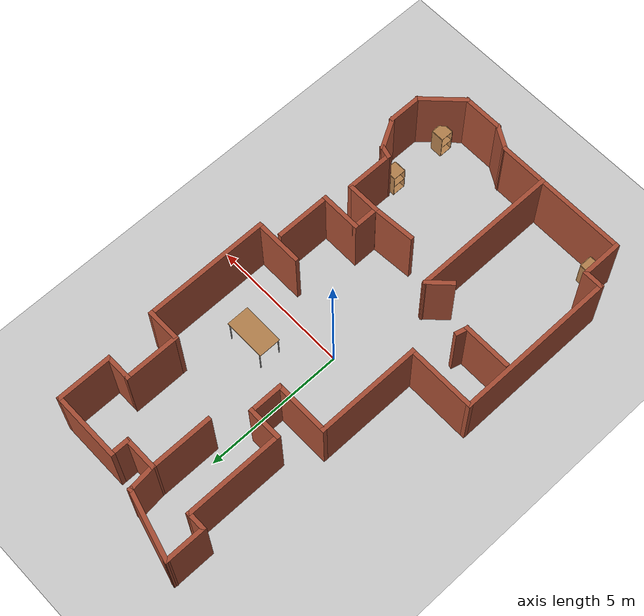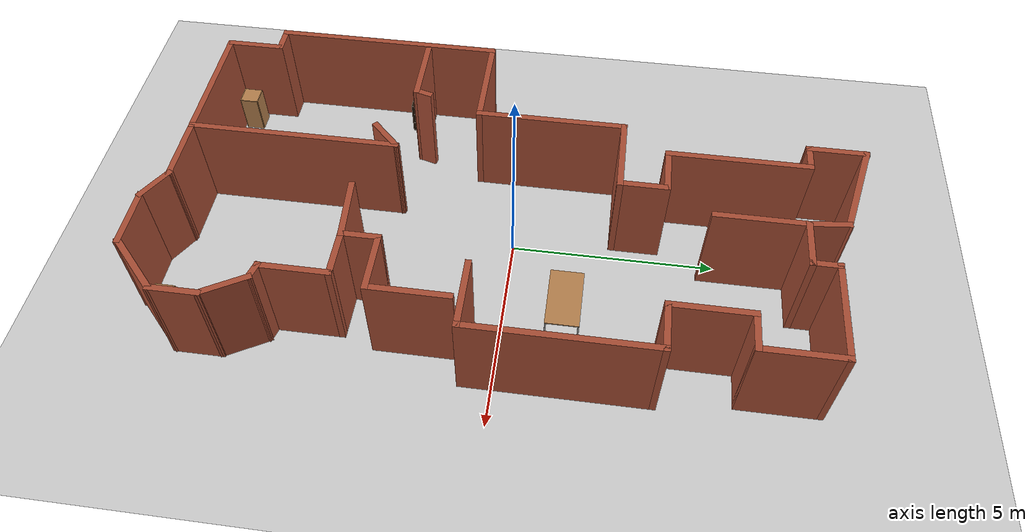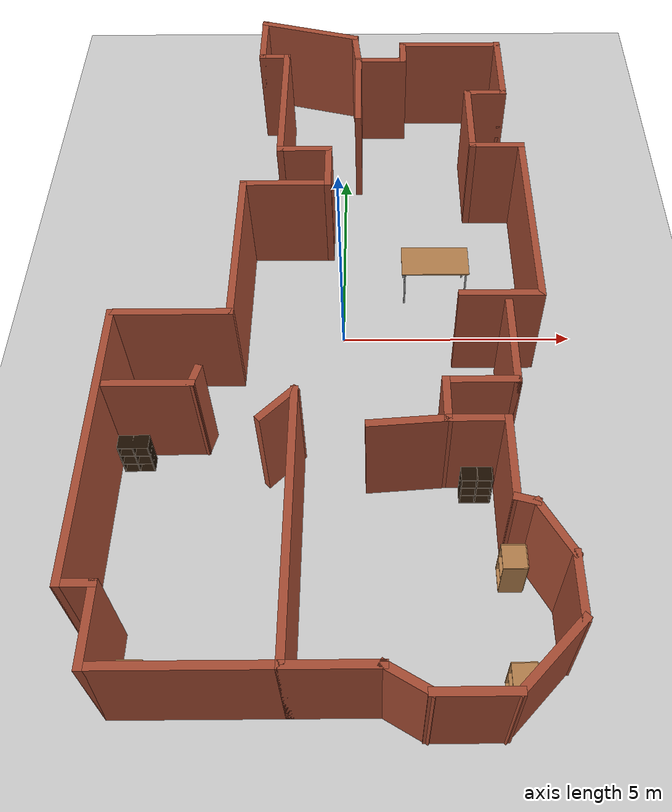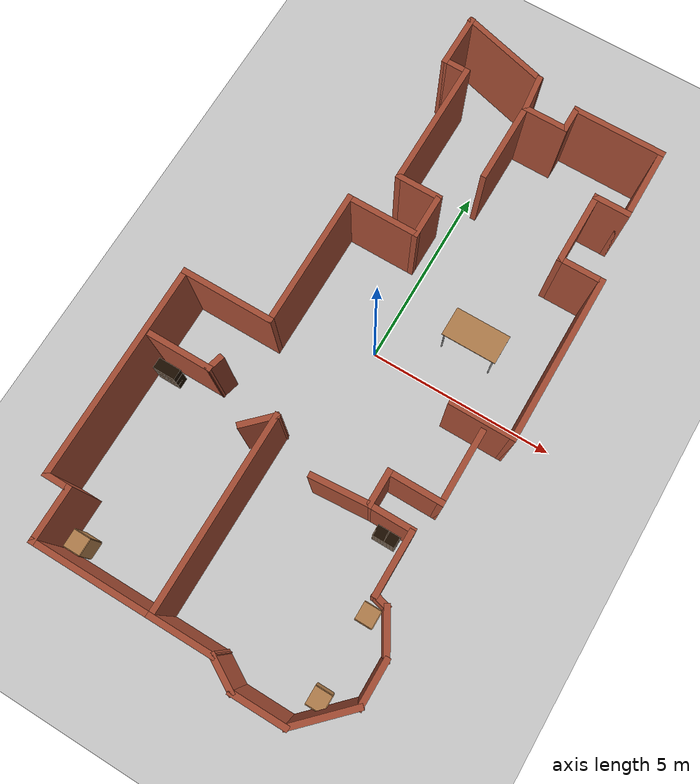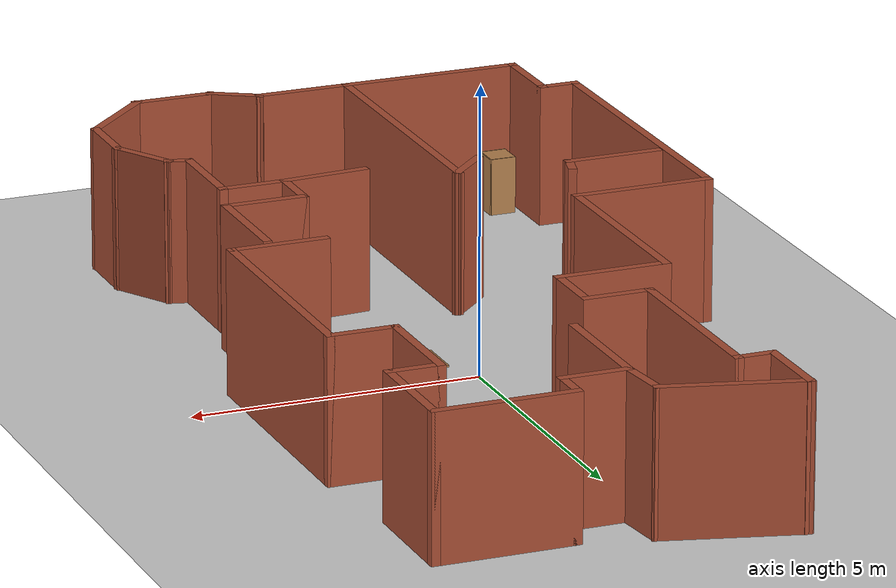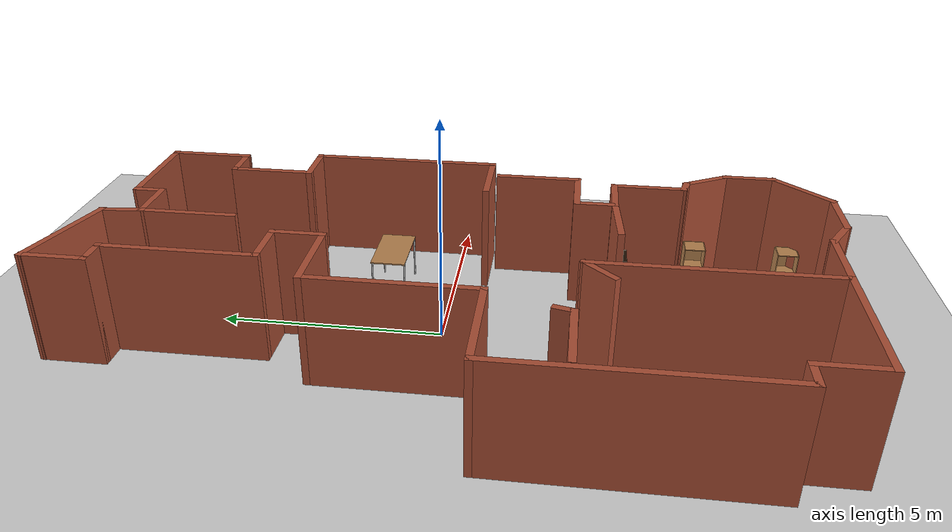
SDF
<sdf version="1.6">
 <world name="default">
  <light name="sun" type="directional">
   <pose>0 0 10 0 -0 0</pose>
   <diffuse>0.8 0.8 0.8 1</diffuse>
   <specular>0.2 0.2 0.2 1</specular>
   <attenuation>
    <range>1000</range>
    <constant>0.9</constant>
    <linear>0.01</linear>
    <quadratic>0.001</quadratic>
   </attenuation>
   <direction>-0.5 0.1 -0.9</direction>
  </light>
  <model name="ground_plane">
   <static>1</static>
   <link name="link">
    <collision name="collision">
     <geometry><plane><normal>0 0 1</normal><size>100 100</size></plane></geometry>
     <surface>
      <contact><collide_bitmask>65535</collide_bitmask></contact>
      <friction><ode><mu>100</mu><mu2>50</mu2></ode></friction>
     </surface>
    </collision>
    <visual name="visual">
     <cast_shadows>0</cast_shadows>
     <geometry><plane><normal>0 0 1</normal><size>100 100</size></plane></geometry>
     <material>
      <script><uri>file://media/materials/scripts/gazebo.material</uri><name>Gazebo/Grey</name></script>
     </material>
    </visual>
   </link>
  </model>
  <gravity>0 0 -9.8</gravity>
  <magnetic_field>6e-06 2.3e-05 -4.2e-05</magnetic_field>
  <atmosphere type="adiabatic"/>
  <physics name="default_physics" default="0" type="ode">
   <max_step_size>0.001</max_step_size>
   <real_time_factor>1</real_time_factor>
   <real_time_update_rate>1000</real_time_update_rate>
  </physics>
  <scene><ambient>0.4 0.4 0.4 1</ambient><background>0.7 0.7 0.7 1</background><shadows>1</shadows></scene>
  <audio><device>default</device></audio>
  <spherical_coordinates>
   <surface_model>EARTH_WGS84</surface_model>
   <latitude_deg>0</latitude_deg>
   <longitude_deg>0</longitude_deg>
   <elevation>0</elevation>
   <heading_deg>0</heading_deg>
  </spherical_coordinates>
  <model name="map_48">
   <pose>-0.257356 -0.138612 0 0 -0 0</pose>
   <link name="Wall_0">
    <collision name="Wall_0_Collision">
     <geometry><box><size>2.5 0.15 2.5</size></box></geometry>
     <pose>0 0 1.25 0 -0 0</pose>
    </collision>
    <visual name="Wall_0_Visual">
     <pose>0 0 1.25 0 -0 0</pose>
     <geometry><box><size>2.5 0.15 2.5</size></box></geometry>
     <material>
      <script><uri>file://media/materials/scripts/gazebo.material</uri><name>Gazebo/Bricks</name></script>
      <ambient>1 1 1 1</ambient>
     </material>
     <meta><layer>0</layer></meta>
    </visual>
    <pose>-0.646801 8.09049 0 0 -0 2.87979</pose>
   </link>
   <link name="Wall_1">
    <collision name="Wall_1_Collision">
     <geometry><box><size>1.5 0.15 2.5</size></box></geometry>
     <pose>0 0 1.25 0 -0 0</pose>
    </collision>
    <visual name="Wall_1_Visual">
     <pose>0 0 1.25 0 -0 0</pose>
     <geometry><box><size>1.5 0.15 2.5</size></box></geometry>
     <material>
      <script><uri>file://media/materials/scripts/gazebo.material</uri><name>Gazebo/Bricks</name></script>
      <ambient>1 1 1 1</ambient>
     </material>
     <meta><layer>0</layer></meta>
    </visual>
    <pose>-1.78176 7.7196 0 0 -0 -1.5708</pose>
   </link>
   <link name="Wall_10">
    <collision name="Wall_10_Collision">
     <geometry><box><size>0.75 0.15 2.5</size></box></geometry>
     <pose>0 0 1.25 0 -0 0</pose>
    </collision>
    <visual name="Wall_10_Visual">
     <pose>0 0 1.25 0 -0 0</pose>
     <geometry><box><size>0.75 0.15 2.5</size></box></geometry>
     <material>
      <script><uri>file://media/materials/scripts/gazebo.material</uri><name>Gazebo/Bricks</name></script>
      <ambient>1 1 1 1</ambient>
     </material>
     <meta><layer>0</layer></meta>
    </visual>
    <pose>-3.98176 -6.60539 0 0 -0 0</pose>
   </link>
   <link name="Wall_11">
    <collision name="Wall_11_Collision">
     <geometry><box><size>1.5 0.15 2.5</size></box></geometry>
     <pose>0 0 1.25 0 -0 0</pose>
    </collision>
    <visual name="Wall_11_Visual">
     <pose>0 0 1.25 0 -0 0</pose>
     <geometry><box><size>1.5 0.15 2.5</size></box></geometry>
     <material>
      <script><uri>file://media/materials/scripts/gazebo.material</uri><name>Gazebo/Bricks</name></script>
      <ambient>1 1 1 1</ambient>
     </material>
     <meta><layer>0</layer></meta>
    </visual>
    <pose>-3.68176 -7.2804 0 0 -0 -1.5708</pose>
   </link>
   <link name="Wall_12">
    <collision name="Wall_12_Collision">
     <geometry><box><size>3.25 0.15 2.5</size></box></geometry>
     <pose>0 0 1.25 0 -0 0</pose>
    </collision>
    <visual name="Wall_12_Visual">
     <pose>0 0 1.25 0 -0 0</pose>
     <geometry><box><size>3.25 0.15 2.5</size></box></geometry>
     <material>
      <script><uri>file://media/materials/scripts/gazebo.material</uri><name>Gazebo/Bricks</name></script>
      <ambient>1 1 1 1</ambient>
     </material>
     <meta><layer>0</layer></meta>
    </visual>
    <pose>-2.13176 -7.9554 0 0 -0 0</pose>
   </link>
   <link name="Wall_13">
    <collision name="Wall_13_Collision">
     <geometry><box><size>5.25 0.15 2.5</size></box></geometry>
     <pose>0 0 1.25 0 -0 0</pose>
    </collision>
    <visual name="Wall_13_Visual">
     <pose>0 0 1.25 0 -0 0</pose>
     <geometry><box><size>5.25 0.15 2.5</size></box></geometry>
     <material>
      <script><uri>file://media/materials/scripts/gazebo.material</uri><name>Gazebo/Bricks</name></script>
      <ambient>1 1 1 1</ambient>
     </material>
     <meta><layer>0</layer></meta>
    </visual>
    <pose>-0.581764 -5.4054 0 0 -0 1.5708</pose>
   </link>
   <link name="Wall_15">
    <collision name="Wall_15_Collision">
     <geometry><box><size>1.75 0.15 2.5</size></box></geometry>
     <pose>0 0 1.25 0 -0 0</pose>
    </collision>
    <visual name="Wall_15_Visual">
     <pose>0 0 1.25 0 -0 0</pose>
     <geometry><box><size>1.75 0.15 2.5</size></box></geometry>
     <material>
      <script><uri>file://media/materials/scripts/gazebo.material</uri><name>Gazebo/Bricks</name></script>
      <ambient>1 1 1 1</ambient>
     </material>
     <meta><layer>0</layer></meta>
    </visual>
    <pose>0.218236 -7.9554 0 0 -0 0</pose>
   </link>
   <link name="Wall_16">
    <collision name="Wall_16_Collision">
     <geometry><box><size>1 0.15 2.5</size></box></geometry>
     <pose>0 0 1.25 0 -0 0</pose>
    </collision>
    <visual name="Wall_16_Visual">
     <pose>0 0 1.25 0 -0 0</pose>
     <geometry><box><size>1 0.15 2.5</size></box></geometry>
     <material>
      <script><uri>file://media/materials/scripts/gazebo.material</uri><name>Gazebo/Bricks</name></script>
      <ambient>1 1 1 1</ambient>
     </material>
     <meta><layer>0</layer></meta>
    </visual>
    <pose>1.3863 -8.16789 0 0 -0 -0.523599</pose>
   </link>
   <link name="Wall_17">
    <collision name="Wall_17_Collision">
     <geometry><box><size>1.5 0.15 2.5</size></box></geometry>
     <pose>0 0 1.25 0 -0 0</pose>
    </collision>
    <visual name="Wall_17_Visual">
     <pose>0 0 1.25 0 -0 0</pose>
     <geometry><box><size>1.5 0.15 2.5</size></box></geometry>
     <material>
      <script><uri>file://media/materials/scripts/gazebo.material</uri><name>Gazebo/Bricks</name></script>
      <ambient>1 1 1 1</ambient>
     </material>
     <meta><layer>0</layer></meta>
    </visual>
    <pose>2.42936 -8.3804 0 0 -0 0</pose>
   </link>
   <link name="Wall_18">
    <collision name="Wall_18_Collision">
     <geometry><box><size>1.75 0.15 2.5</size></box></geometry>
     <pose>0 0 1.25 0 -0 0</pose>
    </collision>
    <visual name="Wall_18_Visual">
     <pose>0 0 1.25 0 -0 0</pose>
     <geometry><box><size>1.75 0.15 2.5</size></box></geometry>
     <material>
      <script><uri>file://media/materials/scripts/gazebo.material</uri><name>Gazebo/Bricks</name></script>
      <ambient>1 1 1 1</ambient>
     </material>
     <meta><layer>0</layer></meta>
    </visual>
    <pose>3.67004 -7.81471 0 0 -0 0.785398</pose>
   </link>
   <link name="Wall_19">
    <collision name="Wall_19_Collision">
     <geometry><box><size>1.25 0.15 2.5</size></box></geometry>
     <pose>0 0 1.25 0 -0 0</pose>
    </collision>
    <visual name="Wall_19_Visual">
     <pose>0 0 1.25 0 -0 0</pose>
     <geometry><box><size>1.25 0.15 2.5</size></box></geometry>
     <material>
      <script><uri>file://media/materials/scripts/gazebo.material</uri><name>Gazebo/Bricks</name></script>
      <ambient>1 1 1 1</ambient>
     </material>
     <meta><layer>0</layer></meta>
    </visual>
    <pose>4.23573 -6.69902 0 0 -0 1.5708</pose>
   </link>
   <link name="Wall_2">
    <collision name="Wall_2_Collision">
     <geometry><box><size>0.75 0.15 2.5</size></box></geometry>
     <pose>0 0 1.25 0 -0 0</pose>
    </collision>
    <visual name="Wall_2_Visual">
     <pose>0 0 1.25 0 -0 0</pose>
     <geometry><box><size>0.75 0.15 2.5</size></box></geometry>
     <material>
      <script><uri>file://media/materials/scripts/gazebo.material</uri><name>Gazebo/Bricks</name></script>
      <ambient>1 1 1 1</ambient>
     </material>
     <meta><layer>0</layer></meta>
    </visual>
    <pose>-1.48176 7.0446 0 0 -0 0</pose>
   </link>
   <link name="Wall_20">
    <collision name="Wall_20_Collision">
     <geometry><box><size>1.25 0.15 2.5</size></box></geometry>
     <pose>0 0 1.25 0 -0 0</pose>
    </collision>
    <visual name="Wall_20_Visual">
     <pose>0 0 1.25 0 -0 0</pose>
     <geometry><box><size>1.25 0.15 2.5</size></box></geometry>
     <material>
      <script><uri>file://media/materials/scripts/gazebo.material</uri><name>Gazebo/Bricks</name></script>
      <ambient>1 1 1 1</ambient>
     </material>
     <meta><layer>0</layer></meta>
    </visual>
    <pose>3.96073 -5.67271 0 0 -0 2.0944</pose>
   </link>
   <link name="Wall_21">
    <collision name="Wall_21_Collision">
     <geometry><box><size>0.5 0.15 2.5</size></box></geometry>
     <pose>0 0 1.25 0 -0 0</pose>
    </collision>
    <visual name="Wall_21_Visual">
     <pose>0 0 1.25 0 -0 0</pose>
     <geometry><box><size>0.5 0.15 2.5</size></box></geometry>
     <material>
      <script><uri>file://media/materials/scripts/gazebo.material</uri><name>Gazebo/Bricks</name></script>
      <ambient>1 1 1 1</ambient>
     </material>
     <meta><layer>0</layer></meta>
    </visual>
    <pose>3.51669 -5.1511 0 0 -0 2.87979</pose>
   </link>
   <link name="Wall_22">
    <collision name="Wall_22_Collision">
     <geometry><box><size>1.75 0.15 2.5</size></box></geometry>
     <pose>0 0 1.25 0 -0 0</pose>
    </collision>
    <visual name="Wall_22_Visual">
     <pose>0 0 1.25 0 -0 0</pose>
     <geometry><box><size>1.75 0.15 2.5</size></box></geometry>
     <material>
      <script><uri>file://media/materials/scripts/gazebo.material</uri><name>Gazebo/Bricks</name></script>
      <ambient>1 1 1 1</ambient>
     </material>
     <meta><layer>0</layer></meta>
    </visual>
    <pose>3.34765 -4.30581 0 0 -0 1.5708</pose>
   </link>
   <link name="Wall_23">
    <collision name="Wall_23_Collision">
     <geometry><box><size>1.25 0.15 2.5</size></box></geometry>
     <pose>0 0 1.25 0 -0 0</pose>
    </collision>
    <visual name="Wall_23_Visual">
     <pose>0 0 1.25 0 -0 0</pose>
     <geometry><box><size>1.25 0.15 2.5</size></box></geometry>
     <material>
      <script><uri>file://media/materials/scripts/gazebo.material</uri><name>Gazebo/Bricks</name></script>
      <ambient>1 1 1 1</ambient>
     </material>
     <meta><layer>0</layer></meta>
    </visual>
    <pose>2.79765 -3.50581 0 0 -0 3.14159</pose>
   </link>
   <link name="Wall_24">
    <collision name="Wall_24_Collision">
     <geometry><box><size>1 0.15 2.5</size></box></geometry>
     <pose>0 0 1.25 0 -0 0</pose>
    </collision>
    <visual name="Wall_24_Visual">
     <pose>0 0 1.25 0 -0 0</pose>
     <geometry><box><size>1 0.15 2.5</size></box></geometry>
     <material>
      <script><uri>file://media/materials/scripts/gazebo.material</uri><name>Gazebo/Bricks</name></script>
      <ambient>1 1 1 1</ambient>
     </material>
     <meta><layer>0</layer></meta>
    </visual>
    <pose>2.24765 -3.08081 0 0 -0 1.5708</pose>
   </link>
   <link name="Wall_25">
    <collision name="Wall_25_Collision">
     <geometry><box><size>1.5 0.15 2.5</size></box></geometry>
     <pose>0 0 1.25 0 -0 0</pose>
    </collision>
    <visual name="Wall_25_Visual">
     <pose>0 0 1.25 0 -0 0</pose>
     <geometry><box><size>1.5 0.15 2.5</size></box></geometry>
     <material>
      <script><uri>file://media/materials/scripts/gazebo.material</uri><name>Gazebo/Bricks</name></script>
      <ambient>1 1 1 1</ambient>
     </material>
     <meta><layer>0</layer></meta>
    </visual>
    <pose>2.92265 -2.65581 0 0 -0 0</pose>
   </link>
   <link name="Wall_26">
    <collision name="Wall_26_Collision">
     <geometry><box><size>2 0.15 2.5</size></box></geometry>
     <pose>0 0 1.25 0 -0 0</pose>
    </collision>
    <visual name="Wall_26_Visual">
     <pose>0 0 1.25 0 -0 0</pose>
     <geometry><box><size>2 0.15 2.5</size></box></geometry>
     <material>
      <script><uri>file://media/materials/scripts/gazebo.material</uri><name>Gazebo/Bricks</name></script>
      <ambient>1 1 1 1</ambient>
     </material>
     <meta><layer>0</layer></meta>
    </visual>
    <pose>3.59765 -1.73081 0 0 -0 1.5708</pose>
   </link>
   <link name="Wall_28">
    <collision name="Wall_28_Collision">
     <geometry><box><size>1.75 0.15 2.5</size></box></geometry>
     <pose>0 0 1.25 0 -0 0</pose>
    </collision>
    <visual name="Wall_28_Visual">
     <pose>0 0 1.25 0 -0 0</pose>
     <geometry><box><size>1.75 0.15 2.5</size></box></geometry>
     <material>
      <script><uri>file://media/materials/scripts/gazebo.material</uri><name>Gazebo/Bricks</name></script>
      <ambient>1 1 1 1</ambient>
     </material>
     <meta><layer>0</layer></meta>
    </visual>
    <pose>3.48176 -0.56001 0 0 -0 0</pose>
   </link>
   <link name="Wall_29">
    <collision name="Wall_29_Collision">
     <geometry><box><size>4.5 0.15 2.5</size></box></geometry>
     <pose>0 0 1.25 0 -0 0</pose>
    </collision>
    <visual name="Wall_29_Visual">
     <pose>0 0 1.25 0 -0 0</pose>
     <geometry><box><size>4.5 0.15 2.5</size></box></geometry>
     <material>
      <script><uri>file://media/materials/scripts/gazebo.material</uri><name>Gazebo/Bricks</name></script>
      <ambient>1 1 1 1</ambient>
     </material>
     <meta><layer>0</layer></meta>
    </visual>
    <pose>4.28176 1.61499 0 0 -0 1.5708</pose>
   </link>
   <link name="Wall_3">
    <collision name="Wall_3_Collision">
     <geometry><box><size>3.5 0.15 2.5</size></box></geometry>
     <pose>0 0 1.25 0 -0 0</pose>
    </collision>
    <visual name="Wall_3_Visual">
     <pose>0 0 1.25 0 -0 0</pose>
     <geometry><box><size>3.5 0.15 2.5</size></box></geometry>
     <material>
      <script><uri>file://media/materials/scripts/gazebo.material</uri><name>Gazebo/Bricks</name></script>
      <ambient>1 1 1 1</ambient>
     </material>
     <meta><layer>0</layer></meta>
    </visual>
    <pose>-1.18176 5.3696 0 0 -0 -1.5708</pose>
   </link>
   <link name="Wall_30">
    <collision name="Wall_30_Collision">
     <geometry><box><size>1.25 0.15 2.5</size></box></geometry>
     <pose>0 0 1.25 0 -0 0</pose>
    </collision>
    <visual name="Wall_30_Visual">
     <pose>0 0 1.25 0 -0 0</pose>
     <geometry><box><size>1.25 0.15 2.5</size></box></geometry>
     <material>
      <script><uri>file://media/materials/scripts/gazebo.material</uri><name>Gazebo/Bricks</name></script>
      <ambient>1 1 1 1</ambient>
     </material>
     <meta><layer>0</layer></meta>
    </visual>
    <pose>3.73176 3.78999 0 0 -0 3.14159</pose>
   </link>
   <link name="Wall_31">
    <collision name="Wall_31_Collision">
     <geometry><box><size>2 0.15 2.5</size></box></geometry>
     <pose>0 0 1.25 0 -0 0</pose>
    </collision>
    <visual name="Wall_31_Visual">
     <pose>0 0 1.25 0 -0 0</pose>
     <geometry><box><size>2 0.15 2.5</size></box></geometry>
     <material>
      <script><uri>file://media/materials/scripts/gazebo.material</uri><name>Gazebo/Bricks</name></script>
      <ambient>1 1 1 1</ambient>
     </material>
     <meta><layer>0</layer></meta>
    </visual>
    <pose>3.18176 4.71499 0 0 -0 1.5708</pose>
   </link>
   <link name="Wall_32">
    <collision name="Wall_32_Collision">
     <geometry><box><size>1 0.15 2.5</size></box></geometry>
     <pose>0 0 1.25 0 -0 0</pose>
    </collision>
    <visual name="Wall_32_Visual">
     <pose>0 0 1.25 0 -0 0</pose>
     <geometry><box><size>1 0.15 2.5</size></box></geometry>
     <material>
      <script><uri>file://media/materials/scripts/gazebo.material</uri><name>Gazebo/Bricks</name></script>
      <ambient>1 1 1 1</ambient>
     </material>
     <meta><layer>0</layer></meta>
    </visual>
    <pose>3.60676 5.63999 0 0 -0 0</pose>
   </link>
   <link name="Wall_33">
    <collision name="Wall_33_Collision">
     <geometry><box><size>2 0.15 2.5</size></box></geometry>
     <pose>0 0 1.25 0 -0 0</pose>
    </collision>
    <visual name="Wall_33_Visual">
     <pose>0 0 1.25 0 -0 0</pose>
     <geometry><box><size>2 0.15 2.5</size></box></geometry>
     <material>
      <script><uri>file://media/materials/scripts/gazebo.material</uri><name>Gazebo/Bricks</name></script>
      <ambient>1 1 1 1</ambient>
     </material>
     <meta><layer>0</layer></meta>
    </visual>
    <pose>4.03176 6.56499 0 0 -0 1.5708</pose>
   </link>
   <link name="Wall_34">
    <collision name="Wall_34_Collision">
     <geometry><box><size>2.5 0.15 2.5</size></box></geometry>
     <pose>0 0 1.25 0 -0 0</pose>
    </collision>
    <visual name="Wall_34_Visual">
     <pose>0 0 1.25 0 -0 0</pose>
     <geometry><box><size>2.5 0.15 2.5</size></box></geometry>
     <material>
      <script><uri>file://media/materials/scripts/gazebo.material</uri><name>Gazebo/Bricks</name></script>
      <ambient>1 1 1 1</ambient>
     </material>
     <meta><layer>0</layer></meta>
    </visual>
    <pose>2.85676 7.48999 0 0 -0 3.14159</pose>
   </link>
   <link name="Wall_35">
    <collision name="Wall_35_Collision">
     <geometry><box><size>0.75 0.15 2.5</size></box></geometry>
     <pose>0 0 1.25 0 -0 0</pose>
    </collision>
    <visual name="Wall_35_Visual">
     <pose>0 0 1.25 0 -0 0</pose>
     <geometry><box><size>0.75 0.15 2.5</size></box></geometry>
     <material>
      <script><uri>file://media/materials/scripts/gazebo.material</uri><name>Gazebo/Bricks</name></script>
      <ambient>1 1 1 1</ambient>
     </material>
     <meta><layer>0</layer></meta>
    </visual>
    <pose>1.68176 7.18999 0 0 -0 -1.5708</pose>
   </link>
   <link name="Wall_36">
    <collision name="Wall_36_Collision">
     <geometry><box><size>1.25 0.15 2.5</size></box></geometry>
     <pose>0 0 1.25 0 -0 0</pose>
    </collision>
    <visual name="Wall_36_Visual">
     <pose>0 0 1.25 0 -0 0</pose>
     <geometry><box><size>1.25 0.15 2.5</size></box></geometry>
     <material>
      <script><uri>file://media/materials/scripts/gazebo.material</uri><name>Gazebo/Bricks</name></script>
      <ambient>1 1 1 1</ambient>
     </material>
     <meta><layer>0</layer></meta>
    </visual>
    <pose>1.13176 6.88999 0 0 -0 3.14159</pose>
   </link>
   <link name="Wall_37">
    <collision name="Wall_37_Collision">
     <geometry><box><size>1.05126 0.15 2.5</size></box></geometry>
     <pose>0 0 1.25 0 -0 0</pose>
    </collision>
    <visual name="Wall_37_Visual">
     <pose>0 0 1.25 0 -0 0</pose>
     <geometry><box><size>1.05126 0.15 2.5</size></box></geometry>
     <material>
      <script><uri>file://media/materials/scripts/gazebo.material</uri><name>Gazebo/Bricks</name></script>
      <ambient>1 1 1 1</ambient>
     </material>
     <meta><layer>0</layer></meta>
    </visual>
    <pose>0.534963 7.33819 0 0 -0 1.67484</pose>
   </link>
   <link name="Wall_4">
    <collision name="Wall_4_Collision">
     <geometry><box><size>1.25 0.15 2.5</size></box></geometry>
     <pose>0 0 1.25 0 -0 0</pose>
    </collision>
    <visual name="Wall_4_Visual">
     <pose>0 0 1.25 0 -0 0</pose>
     <geometry><box><size>1.25 0.15 2.5</size></box></geometry>
     <material>
      <script><uri>file://media/materials/scripts/gazebo.material</uri><name>Gazebo/Bricks</name></script>
      <ambient>1 1 1 1</ambient>
     </material>
     <meta><layer>0</layer></meta>
    </visual>
    <pose>-0.631764 3.69461 0 0 -0 0</pose>
   </link>
   <link name="Wall_40">
    <collision name="Wall_40_Collision">
     <geometry><box><size>1.59222 0.15 2.5</size></box></geometry>
     <pose>0 0 1.25 0 -0 0</pose>
    </collision>
    <visual name="Wall_40_Visual">
     <pose>0 0 1.25 0 -0 0</pose>
     <geometry><box><size>1.59222 0.15 2.5</size></box></geometry>
     <material>
      <script><uri>file://media/materials/scripts/gazebo.material</uri><name>Gazebo/Bricks</name></script>
      <ambient>1 1 1 1</ambient>
     </material>
     <meta><layer>0</layer></meta>
    </visual>
    <pose>1.52842 -3.55773 0 0 -0 0.072064</pose>
   </link>
   <link name="Wall_43">
    <collision name="Wall_43_Collision">
     <geometry><box><size>1.75 0.15 2.5</size></box></geometry>
     <pose>0 0 1.25 0 -0 0</pose>
    </collision>
    <visual name="Wall_43_Visual">
     <pose>0 0 1.25 0 -0 0</pose>
     <geometry><box><size>1.75 0.15 2.5</size></box></geometry>
     <material>
      <script><uri>file://media/materials/scripts/gazebo.material</uri><name>Gazebo/Bricks</name></script>
      <ambient>1 1 1 1</ambient>
     </material>
     <meta><layer>0</layer></meta>
    </visual>
    <pose>-3.31305 -2.70011 0 0 -0 0</pose>
   </link>
   <link name="Wall_44">
    <collision name="Wall_44_Collision">
     <geometry><box><size>0.5 0.15 2.5</size></box></geometry>
     <pose>0 0 1.25 0 -0 0</pose>
    </collision>
    <visual name="Wall_44_Visual">
     <pose>0 0 1.25 0 -0 0</pose>
     <geometry><box><size>0.5 0.15 2.5</size></box></geometry>
     <material>
      <script><uri>file://media/materials/scripts/gazebo.material</uri><name>Gazebo/Bricks</name></script>
      <ambient>1 1 1 1</ambient>
     </material>
     <meta><layer>0</layer></meta>
    </visual>
    <pose>-2.46776 -2.53107 0 0 -0 1.309</pose>
   </link>
   <link name="Wall_46">
    <collision name="Wall_46_Collision">
     <geometry><box><size>1 0.15 2.5</size></box></geometry>
     <pose>0 0 1.25 0 -0 0</pose>
    </collision>
    <visual name="Wall_46_Visual">
     <pose>0 0 1.25 0 -0 0</pose>
     <geometry><box><size>1 0.15 2.5</size></box></geometry>
     <material>
      <script><uri>file://media/materials/scripts/gazebo.material</uri><name>Gazebo/Bricks</name></script>
      <ambient>1 1 1 1</ambient>
     </material>
     <meta><layer>0</layer></meta>
    </visual>
    <pose>-0.882284 -3.15591 0 0 -0 -2.35619</pose>
   </link>
   <link name="Wall_5">
    <collision name="Wall_5_Collision">
     <geometry><box><size>1.25 0.15 2.5</size></box></geometry>
     <pose>0 0 1.25 0 -0 0</pose>
    </collision>
    <visual name="Wall_5_Visual">
     <pose>0 0 1.25 0 -0 0</pose>
     <geometry><box><size>1.25 0.15 2.5</size></box></geometry>
     <material>
      <script><uri>file://media/materials/scripts/gazebo.material</uri><name>Gazebo/Bricks</name></script>
      <ambient>1 1 1 1</ambient>
     </material>
     <meta><layer>0</layer></meta>
    </visual>
    <pose>-0.081764 3.1446 0 0 -0 -1.5708</pose>
   </link>
   <link name="Wall_50">
    <collision name="Wall_50_Collision">
     <geometry><box><size>2.25 0.15 2.5</size></box></geometry>
     <pose>0 0 1.25 0 -0 0</pose>
    </collision>
    <visual name="Wall_50_Visual">
     <pose>0 0 1.25 0 -0 0</pose>
     <geometry><box><size>2.25 0.15 2.5</size></box></geometry>
     <material>
      <script><uri>file://media/materials/scripts/gazebo.material</uri><name>Gazebo/Bricks</name></script>
      <ambient>1 1 1 1</ambient>
     </material>
     <meta><layer>0</layer></meta>
    </visual>
    <pose>0.581764 5.83999 0 0 -0 -1.5708</pose>
   </link>
   <link name="Wall_6">
    <collision name="Wall_6_Collision">
     <geometry><box><size>2 0.15 2.5</size></box></geometry>
     <pose>0 0 1.25 0 -0 0</pose>
    </collision>
    <visual name="Wall_6_Visual">
     <pose>0 0 1.25 0 -0 0</pose>
     <geometry><box><size>2 0.15 2.5</size></box></geometry>
     <material>
      <script><uri>file://media/materials/scripts/gazebo.material</uri><name>Gazebo/Bricks</name></script>
      <ambient>1 1 1 1</ambient>
     </material>
     <meta><layer>0</layer></meta>
    </visual>
    <pose>-1.00676 2.59461 0 0 -0 3.14159</pose>
   </link>
   <link name="Wall_7">
    <collision name="Wall_7_Collision">
     <geometry><box><size>3.75 0.15 2.5</size></box></geometry>
     <pose>0 0 1.25 0 -0 0</pose>
    </collision>
    <visual name="Wall_7_Visual">
     <pose>0 0 1.25 0 -0 0</pose>
     <geometry><box><size>3.75 0.15 2.5</size></box></geometry>
     <material>
      <script><uri>file://media/materials/scripts/gazebo.material</uri><name>Gazebo/Bricks</name></script>
      <ambient>1 1 1 1</ambient>
     </material>
     <meta><layer>0</layer></meta>
    </visual>
    <pose>-1.93176 0.794605 0 0 -0 -1.5708</pose>
   </link>
   <link name="Wall_8">
    <collision name="Wall_8_Collision">
     <geometry><box><size>2.5 0.15 2.5</size></box></geometry>
     <pose>0 0 1.25 0 -0 0</pose>
    </collision>
    <visual name="Wall_8_Visual">
     <pose>0 0 1.25 0 -0 0</pose>
     <geometry><box><size>2.5 0.15 2.5</size></box></geometry>
     <material>
      <script><uri>file://media/materials/scripts/gazebo.material</uri><name>Gazebo/Bricks</name></script>
      <ambient>1 1 1 1</ambient>
     </material>
     <meta><layer>0</layer></meta>
    </visual>
    <pose>-3.10676 -1.0054 0 0 -0 3.14159</pose>
   </link>
   <link name="Wall_9">
    <collision name="Wall_9_Collision">
     <geometry><box><size>5.75 0.15 2.5</size></box></geometry>
     <pose>0 0 1.25 0 -0 0</pose>
    </collision>
    <visual name="Wall_9_Visual">
     <pose>0 0 1.25 0 -0 0</pose>
     <geometry><box><size>5.75 0.15 2.5</size></box></geometry>
     <material>
      <script><uri>file://media/materials/scripts/gazebo.material</uri><name>Gazebo/Bricks</name></script>
      <ambient>1 1 1 1</ambient>
     </material>
     <meta><layer>0</layer></meta>
    </visual>
    <pose>-4.28176 -3.80539 0 0 -0 -1.5708</pose>
   </link>
   <static>1</static>
  </model>
  <model name="cabinet">
   <static>1</static>
   <link name="cabinet_bottom_plate">
    <inertial>
     <pose>0 0 -1 0 -0 0</pose>
     <inertia><ixx>2.05</ixx><ixy>0</ixy><ixz>0</ixz><iyy>2.05</iyy><iyz>0</iyz><izz>2.05</izz></inertia>
     <mass>25</mass>
    </inertial>
    <collision name="cabinet_bottom_plate_geom">
     <pose>0 0 0.01 0 -0 0</pose>
     <geometry><box><size>0.45 0.45 0.02</size></box></geometry>
    </collision>
    <visual name="cabinet_bottom_plate_geom_visual">
     <pose>0 0 0.01 0 -0 0</pose>
     <geometry><box><size>0.45 0.45 0.02</size></box></geometry>
     <material>
      <script><uri>file://media/materials/scripts/gazebo.material</uri><name>Gazebo/Wood</name></script>
     </material>
    </visual>
    <collision name="cabinet_bottom_plate_geom_cabinet_back_plate">
     <pose>0.235 0 0.51 0 -0 0</pose>
     <geometry><box><size>0.02 0.45 1.02</size></box></geometry>
    </collision>
    <visual name="cabinet_bottom_plate_geom_cabinet_back_plate_visual">
     <pose>0.235 0 0.51 0 -0 0</pose>
     <geometry><box><size>0.02 0.45 1.02</size></box></geometry>
     <material>
      <script><uri>file://media/materials/scripts/gazebo.material</uri><name>Gazebo/Wood</name></script>
     </material>
    </visual>
    <collision name="cabinet_bottom_plate_geom_cabinet_left_plate">
     <pose>0 0.235 0.51 0 -0 0</pose>
     <geometry><box><size>0.45 0.02 1.02</size></box></geometry>
    </collision>
    <visual name="cabinet_bottom_plate_geom_cabinet_left_plate_visual">
     <pose>0 0.235 0.51 0 -0 0</pose>
     <geometry><box><size>0.45 0.02 1.02</size></box></geometry>
     <material>
      <script><uri>file://media/materials/scripts/gazebo.material</uri><name>Gazebo/Wood</name></script>
     </material>
    </visual>
    <collision name="cabinet_bottom_plate_geom_cabinet_middle_plate">
     <pose>0 0 0.51 0 -0 0</pose>
     <geometry><box><size>0.45 0.45 0.02</size></box></geometry>
    </collision>
    <visual name="cabinet_bottom_plate_geom_cabinet_middle_plate_visual">
     <pose>0 0 0.51 0 -0 0</pose>
     <geometry><box><size>0.45 0.45 0.02</size></box></geometry>
     <material>
      <script><uri>file://media/materials/scripts/gazebo.material</uri><name>Gazebo/Wood</name></script>
     </material>
    </visual>
    <collision name="cabinet_bottom_plate_geom_cabinet_right_plate">
     <pose>0 -0.235 0.51 0 -0 0</pose>
     <geometry><box><size>0.45 0.02 1.02</size></box></geometry>
    </collision>
    <visual name="cabinet_bottom_plate_geom_cabinet_right_plate_visual">
     <pose>0 -0.235 0.51 0 -0 0</pose>
     <geometry><box><size>0.45 0.02 1.02</size></box></geometry>
     <material>
      <script><uri>file://media/materials/scripts/gazebo.material</uri><name>Gazebo/Wood</name></script>
     </material>
    </visual>
    <collision name="cabinet_bottom_plate_geom_cabinet_top_plate">
     <pose>0 0 1.01 0 -0 0</pose>
     <geometry><box><size>0.45 0.45 0.02</size></box></geometry>
    </collision>
    <visual name="cabinet_bottom_plate_geom_cabinet_top_plate_visual">
     <pose>0 0 1.01 0 -0 0</pose>
     <geometry><box><size>0.45 0.45 0.02</size></box></geometry>
     <material>
      <script><uri>file://media/materials/scripts/gazebo.material</uri><name>Gazebo/Wood</name></script>
     </material>
    </visual>
   </link>
   <pose>-3.52253 -7.72444 0 0 -0 0</pose>
  </model>
  <model name="cabinet_0">
   <static>1</static>
   <link name="cabinet_bottom_plate">
    <inertial>
     <pose>0 0 -1 0 -0 0</pose>
     <inertia><ixx>2.05</ixx><ixy>0</ixy><ixz>0</ixz><iyy>2.05</iyy><iyz>0</iyz><izz>2.05</izz></inertia>
     <mass>25</mass>
    </inertial>
    <collision name="cabinet_bottom_plate_geom">
     <pose>0 0 0.01 0 -0 0</pose>
     <geometry><box><size>0.45 0.45 0.02</size></box></geometry>
    </collision>
    <visual name="cabinet_bottom_plate_geom_visual">
     <pose>0 0 0.01 0 -0 0</pose>
     <geometry><box><size>0.45 0.45 0.02</size></box></geometry>
     <material>
      <script><uri>file://media/materials/scripts/gazebo.material</uri><name>Gazebo/Wood</name></script>
     </material>
    </visual>
    <collision name="cabinet_bottom_plate_geom_cabinet_back_plate">
     <pose>0.235 0 0.51 0 -0 0</pose>
     <geometry><box><size>0.02 0.45 1.02</size></box></geometry>
    </collision>
    <visual name="cabinet_bottom_plate_geom_cabinet_back_plate_visual">
     <pose>0.235 0 0.51 0 -0 0</pose>
     <geometry><box><size>0.02 0.45 1.02</size></box></geometry>
     <material>
      <script><uri>file://media/materials/scripts/gazebo.material</uri><name>Gazebo/Wood</name></script>
     </material>
    </visual>
    <collision name="cabinet_bottom_plate_geom_cabinet_left_plate">
     <pose>0 0.235 0.51 0 -0 0</pose>
     <geometry><box><size>0.45 0.02 1.02</size></box></geometry>
    </collision>
    <visual name="cabinet_bottom_plate_geom_cabinet_left_plate_visual">
     <pose>0 0.235 0.51 0 -0 0</pose>
     <geometry><box><size>0.45 0.02 1.02</size></box></geometry>
     <material>
      <script><uri>file://media/materials/scripts/gazebo.material</uri><name>Gazebo/Wood</name></script>
     </material>
    </visual>
    <collision name="cabinet_bottom_plate_geom_cabinet_middle_plate">
     <pose>0 0 0.51 0 -0 0</pose>
     <geometry><box><size>0.45 0.45 0.02</size></box></geometry>
    </collision>
    <visual name="cabinet_bottom_plate_geom_cabinet_middle_plate_visual">
     <pose>0 0 0.51 0 -0 0</pose>
     <geometry><box><size>0.45 0.45 0.02</size></box></geometry>
     <material>
      <script><uri>file://media/materials/scripts/gazebo.material</uri><name>Gazebo/Wood</name></script>
     </material>
    </visual>
    <collision name="cabinet_bottom_plate_geom_cabinet_right_plate">
     <pose>0 -0.235 0.51 0 -0 0</pose>
     <geometry><box><size>0.45 0.02 1.02</size></box></geometry>
    </collision>
    <visual name="cabinet_bottom_plate_geom_cabinet_right_plate_visual">
     <pose>0 -0.235 0.51 0 -0 0</pose>
     <geometry><box><size>0.45 0.02 1.02</size></box></geometry>
     <material>
      <script><uri>file://media/materials/scripts/gazebo.material</uri><name>Gazebo/Wood</name></script>
     </material>
    </visual>
    <collision name="cabinet_bottom_plate_geom_cabinet_top_plate">
     <pose>0 0 1.01 0 -0 0</pose>
     <geometry><box><size>0.45 0.45 0.02</size></box></geometry>
    </collision>
    <visual name="cabinet_bottom_plate_geom_cabinet_top_plate_visual">
     <pose>0 0 1.01 0 -0 0</pose>
     <geometry><box><size>0.45 0.45 0.02</size></box></geometry>
     <material>
      <script><uri>file://media/materials/scripts/gazebo.material</uri><name>Gazebo/Wood</name></script>
     </material>
    </visual>
   </link>
   <pose>3.15748 -5.66514 0 0 -0 0</pose>
  </model>
  <model name="cabinet_1">
   <static>1</static>
   <link name="cabinet_bottom_plate">
    <inertial>
     <pose>0 0 -1 0 -0 0</pose>
     <inertia><ixx>2.05</ixx><ixy>0</ixy><ixz>0</ixz><iyy>2.05</iyy><iyz>0</iyz><izz>2.05</izz></inertia>
     <mass>25</mass>
    </inertial>
    <collision name="cabinet_bottom_plate_geom">
     <pose>0 0 0.01 0 -0 0</pose>
     <geometry><box><size>0.45 0.45 0.02</size></box></geometry>
    </collision>
    <visual name="cabinet_bottom_plate_geom_visual">
     <pose>0 0 0.01 0 -0 0</pose>
     <geometry><box><size>0.45 0.45 0.02</size></box></geometry>
     <material>
      <script><uri>file://media/materials/scripts/gazebo.material</uri><name>Gazebo/Wood</name></script>
     </material>
    </visual>
    <collision name="cabinet_bottom_plate_geom_cabinet_back_plate">
     <pose>0.235 0 0.51 0 -0 0</pose>
     <geometry><box><size>0.02 0.45 1.02</size></box></geometry>
    </collision>
    <visual name="cabinet_bottom_plate_geom_cabinet_back_plate_visual">
     <pose>0.235 0 0.51 0 -0 0</pose>
     <geometry><box><size>0.02 0.45 1.02</size></box></geometry>
     <material>
      <script><uri>file://media/materials/scripts/gazebo.material</uri><name>Gazebo/Wood</name></script>
     </material>
    </visual>
    <collision name="cabinet_bottom_plate_geom_cabinet_left_plate">
     <pose>0 0.235 0.51 0 -0 0</pose>
     <geometry><box><size>0.45 0.02 1.02</size></box></geometry>
    </collision>
    <visual name="cabinet_bottom_plate_geom_cabinet_left_plate_visual">
     <pose>0 0.235 0.51 0 -0 0</pose>
     <geometry><box><size>0.45 0.02 1.02</size></box></geometry>
     <material>
      <script><uri>file://media/materials/scripts/gazebo.material</uri><name>Gazebo/Wood</name></script>
     </material>
    </visual>
    <collision name="cabinet_bottom_plate_geom_cabinet_middle_plate">
     <pose>0 0 0.51 0 -0 0</pose>
     <geometry><box><size>0.45 0.45 0.02</size></box></geometry>
    </collision>
    <visual name="cabinet_bottom_plate_geom_cabinet_middle_plate_visual">
     <pose>0 0 0.51 0 -0 0</pose>
     <geometry><box><size>0.45 0.45 0.02</size></box></geometry>
     <material>
      <script><uri>file://media/materials/scripts/gazebo.material</uri><name>Gazebo/Wood</name></script>
     </material>
    </visual>
    <collision name="cabinet_bottom_plate_geom_cabinet_right_plate">
     <pose>0 -0.235 0.51 0 -0 0</pose>
     <geometry><box><size>0.45 0.02 1.02</size></box></geometry>
    </collision>
    <visual name="cabinet_bottom_plate_geom_cabinet_right_plate_visual">
     <pose>0 -0.235 0.51 0 -0 0</pose>
     <geometry><box><size>0.45 0.02 1.02</size></box></geometry>
     <material>
      <script><uri>file://media/materials/scripts/gazebo.material</uri><name>Gazebo/Wood</name></script>
     </material>
    </visual>
    <collision name="cabinet_bottom_plate_geom_cabinet_top_plate">
     <pose>0 0 1.01 0 -0 0</pose>
     <geometry><box><size>0.45 0.45 0.02</size></box></geometry>
    </collision>
    <visual name="cabinet_bottom_plate_geom_cabinet_top_plate_visual">
     <pose>0 0 1.01 0 -0 0</pose>
     <geometry><box><size>0.45 0.45 0.02</size></box></geometry>
     <material>
      <script><uri>file://media/materials/scripts/gazebo.material</uri><name>Gazebo/Wood</name></script>
     </material>
    </visual>
   </link>
   <pose>3.1455 -7.80944 0 0 -0 0</pose>
  </model>
  <model name="6_Cube_StorageE">
   <link name="Wall_0">
    <pose>0 0 0.01 0 -0 0</pose>
    <inertial>
     <mass>1.6201</mass>
     <inertia><ixx>0.0119</ixx><iyy>0.0631</iyy><izz>0.0513</izz><ixy>0</ixy><ixz>0</ixz><iyz>0</iyz></inertia>
    </inertial>
    <collision name="Wall_0_Collision"><geometry><box><size>0.616 0.296 0.02</size></box></geometry></collision>
    <visual name="Wall_0_Visual">
     <geometry><box><size>0.616 0.296 0.02</size></box></geometry>
     <material>
      <script><uri>file://media/materials/scripts/gazebo.material</uri><name>Gazebo/Grey</name></script>
      <ambient>0.105882 0.0509804 0 1</ambient>
     </material>
    </visual>
   </link>
   <joint name="0_2" type="fixed">
    <pose>-0.308 0 0 0 -0 0</pose>
    <parent>Wall_2</parent>
    <child>Wall_0</child>
    <axis>
     <xyz>1 0 0</xyz>
     <use_parent_model_frame>0</use_parent_model_frame>
     <limit><lower>-1e+16</lower><upper>1e+16</upper></limit>
    </axis>
   </joint>
   <joint name="0_12" type="fixed">
    <parent>Wall_12</parent>
    <child>Wall_0</child>
    <axis>
     <xyz>0 0 1</xyz>
     <use_parent_model_frame>0</use_parent_model_frame>
     <limit><lower>-1e+16</lower><upper>1e+16</upper></limit>
    </axis>
   </joint>
   <joint name="0_4" type="fixed">
    <pose>0.308 0 0 0 -0 0</pose>
    <parent>Wall_4</parent>
    <child>Wall_0</child>
    <axis>
     <xyz>1 0 0</xyz>
     <use_parent_model_frame>0</use_parent_model_frame>
     <limit><lower>-1e+16</lower><upper>1e+16</upper></limit>
    </axis>
   </joint>
   <link name="Wall_10">
    <pose>0 0 0.61 0 -0 0</pose>
    <inertial>
     <mass>1.6201</mass>
     <inertia><ixx>0.0119</ixx><iyy>0.0631</iyy><izz>0.0513</izz><ixy>0</ixy><ixz>0</ixz><iyz>0</iyz></inertia>
    </inertial>
    <collision name="Wall_10_Collision"><geometry><box><size>0.616 0.296 0.02</size></box></geometry></collision>
    <visual name="Wall_10_Visual">
     <geometry><box><size>0.616 0.296 0.02</size></box></geometry>
     <material>
      <script><uri>file://media/materials/scripts/gazebo.material</uri><name>Gazebo/Grey</name></script>
      <ambient>0.105882 0.0509804 0 1</ambient>
     </material>
    </visual>
   </link>
   <joint name="10_2" type="fixed">
    <pose>-0.308 0 0 0 -0 0</pose>
    <parent>Wall_2</parent>
    <child>Wall_10</child>
    <axis>
     <xyz>1 0 0</xyz>
     <use_parent_model_frame>0</use_parent_model_frame>
     <limit><lower>-1e+16</lower><upper>1e+16</upper></limit>
    </axis>
   </joint>
   <joint name="10_12" type="fixed">
    <parent>Wall_12</parent>
    <child>Wall_10</child>
    <axis>
     <xyz>0 0 1</xyz>
     <use_parent_model_frame>0</use_parent_model_frame>
     <limit><lower>-1e+16</lower><upper>1e+16</upper></limit>
    </axis>
   </joint>
   <joint name="10_4" type="fixed">
    <pose>0.308 0 0 0 -0 0</pose>
    <parent>Wall_4</parent>
    <child>Wall_10</child>
    <axis>
     <xyz>1 0 0</xyz>
     <use_parent_model_frame>0</use_parent_model_frame>
     <limit><lower>-1e+16</lower><upper>1e+16</upper></limit>
    </axis>
   </joint>
   <link name="Wall_12">
    <pose>0 0 0.4575 0 -0 0</pose>
    <inertial>
     <mass>2.4065</mass>
     <inertia><ixx>0.0177</ixx><iyy>0.1855</iyy><izz>0.168</izz><ixy>0</ixy><ixz>0</ixz><iyz>0</iyz></inertia>
    </inertial>
    <collision name="Wall_12_Collision"><geometry><box><size>0.02 0.296 0.915</size></box></geometry></collision>
    <visual name="Wall_12_Visual">
     <geometry><box><size>0.02 0.296 0.915</size></box></geometry>
     <material>
      <script><uri>file://media/materials/scripts/gazebo.material</uri><name>Gazebo/Grey</name></script>
      <ambient>0.105882 0.0509804 0 1</ambient>
     </material>
    </visual>
   </link>
   <link name="Wall_2">
    <pose>-0.298 0 0.4575 0 -0 0</pose>
    <inertial>
     <mass>2.4065</mass>
     <inertia><ixx>0.0177</ixx><iyy>0.1855</iyy><izz>0.168</izz><ixy>0</ixy><ixz>0</ixz><iyz>0</iyz></inertia>
    </inertial>
    <collision name="Wall_2_Collision"><geometry><box><size>0.02 0.296 0.915</size></box></geometry></collision>
    <visual name="Wall_2_Visual">
     <geometry><box><size>0.02 0.296 0.915</size></box></geometry>
     <material>
      <script><uri>file://media/materials/scripts/gazebo.material</uri><name>Gazebo/Grey</name></script>
      <ambient>0.105882 0.0509804 0 1</ambient>
     </material>
    </visual>
   </link>
   <link name="Wall_4">
    <pose>0.298 0 0.4575 0 -0 0</pose>
    <inertial>
     <mass>2.4065</mass>
     <inertia><ixx>0.0177</ixx><iyy>0.1855</iyy><izz>0.168</izz><ixy>0</ixy><ixz>0</ixz><iyz>0</iyz></inertia>
    </inertial>
    <collision name="Wall_4_Collision"><geometry><box><size>0.02 0.296 0.915</size></box></geometry></collision>
    <visual name="Wall_4_Visual">
     <geometry><box><size>0.02 0.296 0.915</size></box></geometry>
     <material>
      <script><uri>file://media/materials/scripts/gazebo.material</uri><name>Gazebo/Grey</name></script>
      <ambient>0.105882 0.0509804 0 1</ambient>
     </material>
    </visual>
   </link>
   <link name="Wall_6">
    <pose>0 0 0.905 0 -0 0</pose>
    <inertial>
     <mass>1.6201</mass>
     <inertia><ixx>0.0119</ixx><iyy>0.0631</iyy><izz>0.0513</izz><ixy>0</ixy><ixz>0</ixz><iyz>0</iyz></inertia>
    </inertial>
    <collision name="Wall_6_Collision"><geometry><box><size>0.616 0.296 0.02</size></box></geometry></collision>
    <visual name="Wall_6_Visual">
     <geometry><box><size>0.616 0.296 0.02</size></box></geometry>
     <material>
      <script><uri>file://media/materials/scripts/gazebo.material</uri><name>Gazebo/Grey</name></script>
      <ambient>0.105882 0.0509804 0 1</ambient>
     </material>
    </visual>
   </link>
   <joint name="6_2" type="fixed">
    <pose>-0.308 0 0 0 -0 0</pose>
    <parent>Wall_2</parent>
    <child>Wall_6</child>
    <axis>
     <xyz>2 0 0</xyz>
     <use_parent_model_frame>0</use_parent_model_frame>
     <limit><lower>-1e+16</lower><upper>1e+16</upper></limit>
    </axis>
   </joint>
   <joint name="6_12" type="fixed">
    <parent>Wall_12</parent>
    <child>Wall_6</child>
    <axis>
     <xyz>0 0 1</xyz>
     <use_parent_model_frame>0</use_parent_model_frame>
     <limit><lower>-1e+16</lower><upper>1e+16</upper></limit>
    </axis>
   </joint>
   <joint name="6_4" type="fixed">
    <pose>0.308 0 0 0 -0 0</pose>
    <parent>Wall_4</parent>
    <child>Wall_6</child>
    <axis>
     <xyz>1 0 0</xyz>
     <use_parent_model_frame>0</use_parent_model_frame>
     <limit><lower>-1e+16</lower><upper>1e+16</upper></limit>
    </axis>
   </joint>
   <link name="Wall_8">
    <pose>0 0 0.305 0 -0 0</pose>
    <inertial>
     <mass>1.6201</mass>
     <inertia><ixx>0.0119</ixx><iyy>0.0631</iyy><izz>0.0513</izz><ixy>0</ixy><ixz>0</ixz><iyz>0</iyz></inertia>
    </inertial>
    <collision name="Wall_8_Collision"><geometry><box><size>0.616 0.296 0.02</size></box></geometry></collision>
    <visual name="Wall_8_Visual">
     <geometry><box><size>0.616 0.296 0.02</size></box></geometry>
     <material>
      <script><uri>file://media/materials/scripts/gazebo.material</uri><name>Gazebo/Grey</name></script>
      <ambient>0.105882 0.0509804 0 1</ambient>
     </material>
    </visual>
   </link>
   <joint name="8_2" type="fixed">
    <pose>-0.308 0 0 0 -0 0</pose>
    <parent>Wall_2</parent>
    <child>Wall_8</child>
    <axis>
     <xyz>1 0 0</xyz>
     <use_parent_model_frame>0</use_parent_model_frame>
     <limit><lower>-1e+16</lower><upper>1e+16</upper></limit>
    </axis>
   </joint>
   <joint name="8_12" type="fixed">
    <parent>Wall_12</parent>
    <child>Wall_8</child>
    <axis>
     <xyz>0 0 1</xyz>
     <use_parent_model_frame>0</use_parent_model_frame>
     <limit><lower>-1e+16</lower><upper>1e+16</upper></limit>
    </axis>
   </joint>
   <joint name="8_4" type="fixed">
    <pose>0.308 0 0 0 -0 0</pose>
    <parent>Wall_4</parent>
    <child>Wall_8</child>
    <axis>
     <xyz>1 0 0</xyz>
     <use_parent_model_frame>0</use_parent_model_frame>
     <limit><lower>-1e+16</lower><upper>1e+16</upper></limit>
    </axis>
   </joint>
   <static>1</static>
   <pose>2.61699 -3.90769 0 0 -0 0</pose>
  </model>
  <model name="table">
   <static>1</static>
   <link name="link">
    <collision name="surface">
     <pose>0 0 1 0 -0 0</pose>
     <geometry><box><size>1.5 0.8 0.03</size></box></geometry>
     <surface><friction><ode><mu>0.6</mu><mu2>0.6</mu2></ode></friction></surface>
    </collision>
    <visual name="visual1">
     <pose>0 0 1 0 -0 0</pose>
     <geometry><box><size>1.5 0.8 0.03</size></box></geometry>
     <material>
      <script><uri>file://media/materials/scripts/gazebo.material</uri><name>Gazebo/Wood</name></script>
     </material>
    </visual>
    <collision name="front_left_leg">
     <pose>0.68 0.38 0.5 0 -0 0</pose>
     <geometry><cylinder><radius>0.02</radius><length>1</length></cylinder></geometry>
    </collision>
    <visual name="front_left_leg">
     <pose>0.68 0.38 0.5 0 -0 0</pose>
     <geometry><cylinder><radius>0.02</radius><length>1</length></cylinder></geometry>
     <material>
      <script><uri>file://media/materials/scripts/gazebo.material</uri><name>Gazebo/Grey</name></script>
     </material>
    </visual>
    <collision name="front_right_leg">
     <pose>0.68 -0.38 0.5 0 -0 0</pose>
     <geometry><cylinder><radius>0.02</radius><length>1</length></cylinder></geometry>
    </collision>
    <visual name="front_right_leg">
     <pose>0.68 -0.38 0.5 0 -0 0</pose>
     <geometry><cylinder><radius>0.02</radius><length>1</length></cylinder></geometry>
     <material>
      <script><uri>file://media/materials/scripts/gazebo.material</uri><name>Gazebo/Grey</name></script>
     </material>
    </visual>
    <collision name="back_right_leg">
     <pose>-0.68 -0.38 0.5 0 -0 0</pose>
     <geometry><cylinder><radius>0.02</radius><length>1</length></cylinder></geometry>
    </collision>
    <visual name="back_right_leg">
     <pose>-0.68 -0.38 0.5 0 -0 0</pose>
     <geometry><cylinder><radius>0.02</radius><length>1</length></cylinder></geometry>
     <material>
      <script><uri>file://media/materials/scripts/gazebo.material</uri><name>Gazebo/Grey</name></script>
     </material>
    </visual>
    <collision name="back_left_leg">
     <pose>-0.68 0.38 0.5 0 -0 0</pose>
     <geometry><cylinder><radius>0.02</radius><length>1</length></cylinder></geometry>
    </collision>
    <visual name="back_left_leg">
     <pose>-0.68 0.38 0.5 0 -0 0</pose>
     <geometry><cylinder><radius>0.02</radius><length>1</length></cylinder></geometry>
     <material>
      <script><uri>file://media/materials/scripts/gazebo.material</uri><name>Gazebo/Grey</name></script>
     </material>
    </visual>
   </link>
   <pose>2.03852 1.45408 0 0 -0 0</pose>
  </model>
  <model name="6_Cube_StorageE_0">
   <link name="Wall_0">
    <pose>0 0 0.01 0 -0 0</pose>
    <inertial>
     <mass>1.6201</mass>
     <inertia><ixx>0.0119</ixx><iyy>0.0631</iyy><izz>0.0513</izz><ixy>0</ixy><ixz>0</ixz><iyz>0</iyz></inertia>
    </inertial>
    <collision name="Wall_0_Collision"><geometry><box><size>0.616 0.296 0.02</size></box></geometry></collision>
    <visual name="Wall_0_Visual">
     <geometry><box><size>0.616 0.296 0.02</size></box></geometry>
     <material>
      <script><uri>file://media/materials/scripts/gazebo.material</uri><name>Gazebo/Grey</name></script>
      <ambient>0.105882 0.0509804 0 1</ambient>
     </material>
    </visual>
   </link>
   <joint name="0_2" type="fixed">
    <pose>-0.308 0 0 0 -0 0</pose>
    <parent>Wall_2</parent>
    <child>Wall_0</child>
    <axis>
     <xyz>1 0 0</xyz>
     <use_parent_model_frame>0</use_parent_model_frame>
     <limit><lower>-1e+16</lower><upper>1e+16</upper></limit>
    </axis>
   </joint>
   <joint name="0_12" type="fixed">
    <parent>Wall_12</parent>
    <child>Wall_0</child>
    <axis>
     <xyz>0 0 1</xyz>
     <use_parent_model_frame>0</use_parent_model_frame>
     <limit><lower>-1e+16</lower><upper>1e+16</upper></limit>
    </axis>
   </joint>
   <joint name="0_4" type="fixed">
    <pose>0.308 0 0 0 -0 0</pose>
    <parent>Wall_4</parent>
    <child>Wall_0</child>
    <axis>
     <xyz>1 0 0</xyz>
     <use_parent_model_frame>0</use_parent_model_frame>
     <limit><lower>-1e+16</lower><upper>1e+16</upper></limit>
    </axis>
   </joint>
   <link name="Wall_10">
    <pose>0 0 0.61 0 -0 0</pose>
    <inertial>
     <mass>1.6201</mass>
     <inertia><ixx>0.0119</ixx><iyy>0.0631</iyy><izz>0.0513</izz><ixy>0</ixy><ixz>0</ixz><iyz>0</iyz></inertia>
    </inertial>
    <collision name="Wall_10_Collision"><geometry><box><size>0.616 0.296 0.02</size></box></geometry></collision>
    <visual name="Wall_10_Visual">
     <geometry><box><size>0.616 0.296 0.02</size></box></geometry>
     <material>
      <script><uri>file://media/materials/scripts/gazebo.material</uri><name>Gazebo/Grey</name></script>
      <ambient>0.105882 0.0509804 0 1</ambient>
     </material>
    </visual>
   </link>
   <joint name="10_2" type="fixed">
    <pose>-0.308 0 0 0 -0 0</pose>
    <parent>Wall_2</parent>
    <child>Wall_10</child>
    <axis>
     <xyz>1 0 0</xyz>
     <use_parent_model_frame>0</use_parent_model_frame>
     <limit><lower>-1e+16</lower><upper>1e+16</upper></limit>
    </axis>
   </joint>
   <joint name="10_12" type="fixed">
    <parent>Wall_12</parent>
    <child>Wall_10</child>
    <axis>
     <xyz>0 0 1</xyz>
     <use_parent_model_frame>0</use_parent_model_frame>
     <limit><lower>-1e+16</lower><upper>1e+16</upper></limit>
    </axis>
   </joint>
   <joint name="10_4" type="fixed">
    <pose>0.308 0 0 0 -0 0</pose>
    <parent>Wall_4</parent>
    <child>Wall_10</child>
    <axis>
     <xyz>1 0 0</xyz>
     <use_parent_model_frame>0</use_parent_model_frame>
     <limit><lower>-1e+16</lower><upper>1e+16</upper></limit>
    </axis>
   </joint>
   <link name="Wall_12">
    <pose>0 0 0.4575 0 -0 0</pose>
    <inertial>
     <mass>2.4065</mass>
     <inertia><ixx>0.0177</ixx><iyy>0.1855</iyy><izz>0.168</izz><ixy>0</ixy><ixz>0</ixz><iyz>0</iyz></inertia>
    </inertial>
    <collision name="Wall_12_Collision"><geometry><box><size>0.02 0.296 0.915</size></box></geometry></collision>
    <visual name="Wall_12_Visual">
     <geometry><box><size>0.02 0.296 0.915</size></box></geometry>
     <material>
      <script><uri>file://media/materials/scripts/gazebo.material</uri><name>Gazebo/Grey</name></script>
      <ambient>0.105882 0.0509804 0 1</ambient>
     </material>
    </visual>
   </link>
   <link name="Wall_2">
    <pose>-0.298 0 0.4575 0 -0 0</pose>
    <inertial>
     <mass>2.4065</mass>
     <inertia><ixx>0.0177</ixx><iyy>0.1855</iyy><izz>0.168</izz><ixy>0</ixy><ixz>0</ixz><iyz>0</iyz></inertia>
    </inertial>
    <collision name="Wall_2_Collision"><geometry><box><size>0.02 0.296 0.915</size></box></geometry></collision>
    <visual name="Wall_2_Visual">
     <geometry><box><size>0.02 0.296 0.915</size></box></geometry>
     <material>
      <script><uri>file://media/materials/scripts/gazebo.material</uri><name>Gazebo/Grey</name></script>
      <ambient>0.105882 0.0509804 0 1</ambient>
     </material>
    </visual>
   </link>
   <link name="Wall_4">
    <pose>0.298 0 0.4575 0 -0 0</pose>
    <inertial>
     <mass>2.4065</mass>
     <inertia><ixx>0.0177</ixx><iyy>0.1855</iyy><izz>0.168</izz><ixy>0</ixy><ixz>0</ixz><iyz>0</iyz></inertia>
    </inertial>
    <collision name="Wall_4_Collision"><geometry><box><size>0.02 0.296 0.915</size></box></geometry></collision>
    <visual name="Wall_4_Visual">
     <geometry><box><size>0.02 0.296 0.915</size></box></geometry>
     <material>
      <script><uri>file://media/materials/scripts/gazebo.material</uri><name>Gazebo/Grey</name></script>
      <ambient>0.105882 0.0509804 0 1</ambient>
     </material>
    </visual>
   </link>
   <link name="Wall_6">
    <pose>0 0 0.905 0 -0 0</pose>
    <inertial>
     <mass>1.6201</mass>
     <inertia><ixx>0.0119</ixx><iyy>0.0631</iyy><izz>0.0513</izz><ixy>0</ixy><ixz>0</ixz><iyz>0</iyz></inertia>
    </inertial>
    <collision name="Wall_6_Collision"><geometry><box><size>0.616 0.296 0.02</size></box></geometry></collision>
    <visual name="Wall_6_Visual">
     <geometry><box><size>0.616 0.296 0.02</size></box></geometry>
     <material>
      <script><uri>file://media/materials/scripts/gazebo.material</uri><name>Gazebo/Grey</name></script>
      <ambient>0.105882 0.0509804 0 1</ambient>
     </material>
    </visual>
   </link>
   <joint name="6_2" type="fixed">
    <pose>-0.308 0 0 0 -0 0</pose>
    <parent>Wall_2</parent>
    <child>Wall_6</child>
    <axis>
     <xyz>2 0 0</xyz>
     <use_parent_model_frame>0</use_parent_model_frame>
     <limit><lower>-1e+16</lower><upper>1e+16</upper></limit>
    </axis>
   </joint>
   <joint name="6_12" type="fixed">
    <parent>Wall_12</parent>
    <child>Wall_6</child>
    <axis>
     <xyz>0 0 1</xyz>
     <use_parent_model_frame>0</use_parent_model_frame>
     <limit><lower>-1e+16</lower><upper>1e+16</upper></limit>
    </axis>
   </joint>
   <joint name="6_4" type="fixed">
    <pose>0.308 0 0 0 -0 0</pose>
    <parent>Wall_4</parent>
    <child>Wall_6</child>
    <axis>
     <xyz>1 0 0</xyz>
     <use_parent_model_frame>0</use_parent_model_frame>
     <limit><lower>-1e+16</lower><upper>1e+16</upper></limit>
    </axis>
   </joint>
   <link name="Wall_8">
    <pose>0 0 0.305 0 -0 0</pose>
    <inertial>
     <mass>1.6201</mass>
     <inertia><ixx>0.0119</ixx><iyy>0.0631</iyy><izz>0.0513</izz><ixy>0</ixy><ixz>0</ixz><iyz>0</iyz></inertia>
    </inertial>
    <collision name="Wall_8_Collision"><geometry><box><size>0.616 0.296 0.02</size></box></geometry></collision>
    <visual name="Wall_8_Visual">
     <geometry><box><size>0.616 0.296 0.02</size></box></geometry>
     <material>
      <script><uri>file://media/materials/scripts/gazebo.material</uri><name>Gazebo/Grey</name></script>
      <ambient>0.105882 0.0509804 0 1</ambient>
     </material>
    </visual>
   </link>
   <joint name="8_2" type="fixed">
    <pose>-0.308 0 0 0 -0 0</pose>
    <parent>Wall_2</parent>
    <child>Wall_8</child>
    <axis>
     <xyz>1 0 0</xyz>
     <use_parent_model_frame>0</use_parent_model_frame>
     <limit><lower>-1e+16</lower><upper>1e+16</upper></limit>
    </axis>
   </joint>
   <joint name="8_12" type="fixed">
    <parent>Wall_12</parent>
    <child>Wall_8</child>
    <axis>
     <xyz>0 0 1</xyz>
     <use_parent_model_frame>0</use_parent_model_frame>
     <limit><lower>-1e+16</lower><upper>1e+16</upper></limit>
    </axis>
   </joint>
   <joint name="8_4" type="fixed">
    <pose>0.308 0 0 0 -0 0</pose>
    <parent>Wall_4</parent>
    <child>Wall_8</child>
    <axis>
     <xyz>1 0 0</xyz>
     <use_parent_model_frame>0</use_parent_model_frame>
     <limit><lower>-1e+16</lower><upper>1e+16</upper></limit>
    </axis>
   </joint>
   <static>1</static>
   <pose>-4.09375 -3.14664 0 0 -0 0</pose>
  </model>
 </world>
</sdf>
